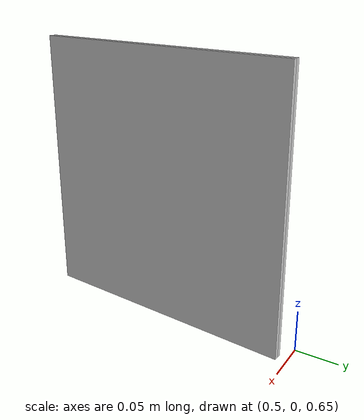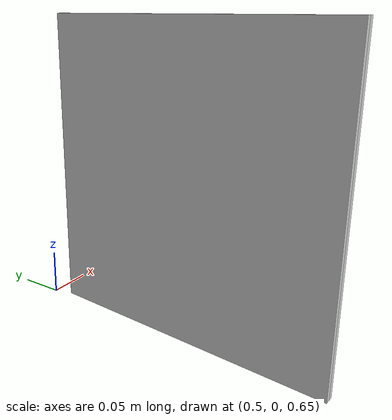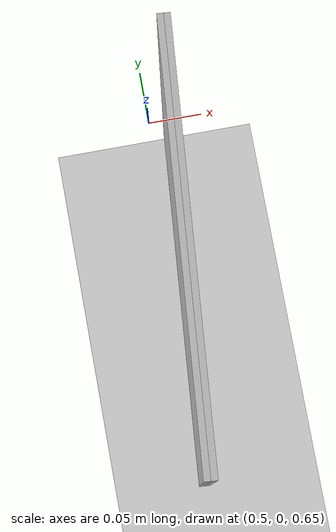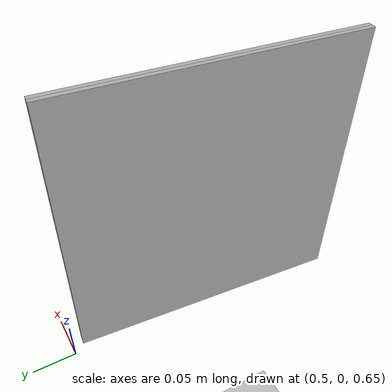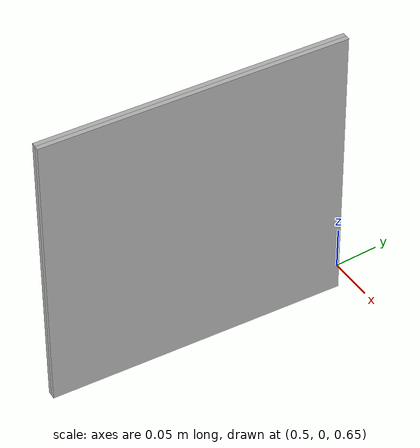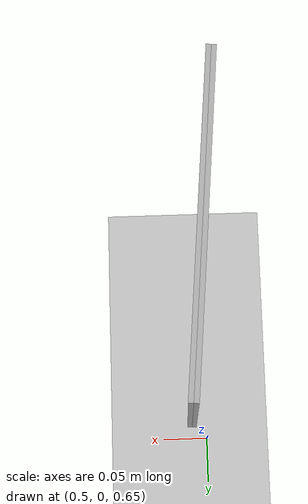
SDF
<sdf version="1.7">
 <world name="default">
  <light name="sun" type="directional">
   <pose>0 0 10 0 -0 0</pose>
   <diffuse>0.8 0.8 0.8 1</diffuse>
   <specular>0.2 0.2 0.2 1</specular>
   <attenuation>
    <range>1000</range>
    <constant>0.9</constant>
    <linear>0.01</linear>
    <quadratic>0.001</quadratic>
   </attenuation>
   <direction>-0.5 0.1 -0.9</direction>
   <spot><inner_angle>0</inner_angle><outer_angle>0</outer_angle><falloff>0</falloff></spot>
  </light>
  <model name="ground_plane">
   <static>1</static>
   <link name="link">
    <collision name="collision">
     <geometry><plane><normal>0 0 1</normal><size>100 100</size></plane></geometry>
     <surface>
      <contact><collide_bitmask>65535</collide_bitmask></contact>
      <friction><ode><mu>100</mu><mu2>50</mu2></ode></friction>
     </surface>
    </collision>
    <visual name="visual">
     <cast_shadows>0</cast_shadows>
     <geometry><plane><normal>0 0 1</normal><size>100 100</size></plane></geometry>
     <material>
      <script><uri>file://media/materials/scripts/gazebo.material</uri><name>Gazebo/Grey</name></script>
     </material>
    </visual>
   </link>
  </model>
  <physics type="ode">
   <real_time_update_rate>1000</real_time_update_rate>
   <max_step_size>0.001</max_step_size>
   <real_time_factor>1</real_time_factor>
   <ode>
    <solver>
     <type>quick</type>
     <iters>150</iters>
     <precon_iters>0</precon_iters>
     <sor>1.4</sor>
     <use_dynamic_moi_rescaling>1</use_dynamic_moi_rescaling>
    </solver>
    <constraints>
     <cfm>1e-05</cfm>
     <erp>0.2</erp>
     <contact_max_correcting_vel>2000</contact_max_correcting_vel>
     <contact_surface_layer>0.01</contact_surface_layer>
    </constraints>
   </ode>
  </physics>
  <scene><ambient>0.4 0.4 0.4 1</ambient><background>0.7 0.7 0.7 1</background><shadows>1</shadows></scene>
  <gravity>0 0 -9.8</gravity>
  <magnetic_field>6e-06 2.3e-05 -4.2e-05</magnetic_field>
  <atmosphere type="adiabatic"/>
  <spherical_coordinates>
   <surface_model>EARTH_WGS84</surface_model>
   <latitude_deg>0</latitude_deg>
   <longitude_deg>0</longitude_deg>
   <elevation>0</elevation>
   <heading_deg>0</heading_deg>
  </spherical_coordinates>
  <model name="Aruco tag29">
   <static>1</static>
   <link name="robot_link">
    <visual name="front_visual">
     <pose>0.0025 0 0 0 -0 0</pose>
     <geometry><box><size>0.005 0.33 0.33</size></box></geometry>
     <material>
      <script><uri>model://tag_29/materials/scripts/tag.material</uri><name>aruco_tag_29</name></script>
     </material>
    </visual>
    <visual name="rear_visual">
     <pose>-0.0025 0 0 0 -0 0</pose>
     <geometry><box><size>0.005 0.33 0.33</size></box></geometry>
    </visual>
   </link>
   <pose>0.50327 -0.178148 0.810323 0 -0 3.0596</pose>
  </model>
 </world>
</sdf>
